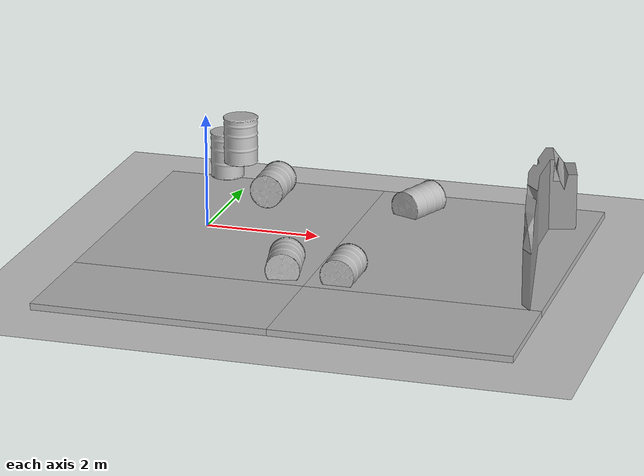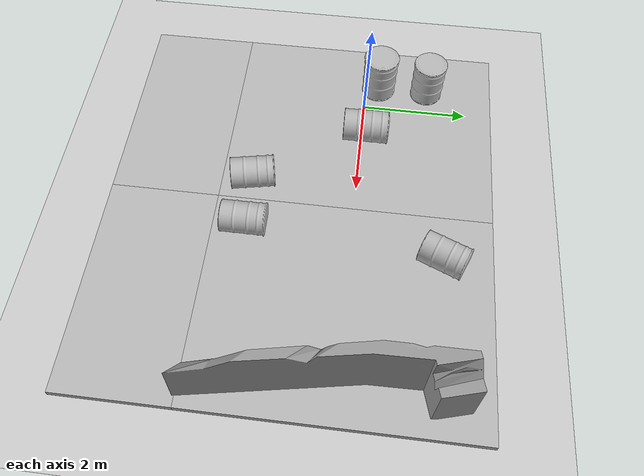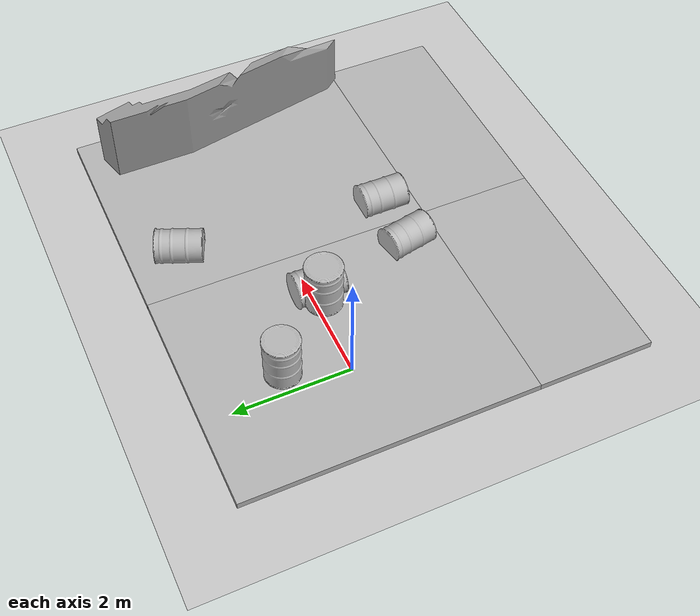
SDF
<gazebo version="1.2">
 <world name="default">
  <physics type="ode">
   <gravity>0 0 -9.8</gravity>
   <update_rate>1000</update_rate>
   <ode>
    <solver><type>quick</type><dt>0.001</dt><iters>50</iters><sor>1.4</sor></solver>
    <constraints>
     <cfm>0.0</cfm>
     <erp>0.2</erp>
     <contact_max_correcting_vel>100.0</contact_max_correcting_vel>
     <contact_surface_layer>0.0</contact_surface_layer>
    </constraints>
   </ode>
  </physics>
  <include><uri>model://sun</uri></include>
  <include><uri>model://asphalt_plane</uri><pose>0.0 0.0 -0.05 0.0 0.0 0.0</pose></include>
  <include><uri>model://mud_box2</uri><pose>2.5 -2.5 -0.05 0.0 0.0 0.0</pose></include>
  <include>
   <uri>model://barrel_50</uri>
   <name>oil drum 1</name>
   <static>true</static>
   <pose>2.0 -2.0 0 0 0 0.2</pose>
  </include>
  <include>
   <uri>model://barrel_50</uri>
   <name>oil drum 2</name>
   <static>true</static>
   <pose>3.000000 -2.000000 0.000000 0.000000 0.000000 0.000000</pose>
  </include>
  <include>
   <uri>model://barrel_50</uri>
   <name>oil drum 3</name>
   <pose>3.311180 1.580800 0.000000 0.000000 0.000000 -0.400000</pose>
  </include>
  <include>
   <uri>model://grey_brickwall</uri>
   <name>broken Grey Brickwall</name>
   <static>true</static>
   <pose>5.534370 1.300000 0.000000 0.000000 0.000000 -1.3000</pose>
  </include>
  <include><uri>model://beer</uri><name>bear1</name><pose>0.561127 0.210769 0.7 0 0 0.000418</pose></include>
  <include>
   <uri>model://beer</uri>
   <name>beer2</name>
   <pose>0.004894 1.141844 0.1 0 0.000008 0.000146</pose>
  </include>
  <include>
   <uri>model://beer</uri>
   <name>beer3</name>
   <pose>1.1879 -0.795979 0.85 -1.570793 -1.339556 0.013769</pose>
  </include>
  <plugin filename="libDRCPlugin.so" name="drc_plugin">
   <drchubo><model_name>drchubo</model_name><pin_link>Body_Torso</pin_link></drchubo>
   <drill>
    <drill_model>drill</drill_model>
    <coupling_link>link</coupling_link>
    <thread_pitch>-1000</thread_pitch>
    <coupling_relative_pose>0.001784 -4.6e-05 0.023 1.56985 1.55991 -0.000936</coupling_relative_pose>
   </drill>
  </plugin>
 </world>
</gazebo>

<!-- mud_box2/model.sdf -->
<sdf version="1.4">
  <model name="mud_box">
    <static>true</static>
    <link name="link">
      <collision name="collision">
        <geometry>
          <box>
            <size>8 10 0.2</size>
          </box>
        </geometry>
      </collision>
      <visual name="visual_1">
        <pose>-2 2.5 0 0 0 0</pose>
        <cast_shadows>false</cast_shadows>
        <geometry>
          <box>
            <size>4 5 0.2</size>
          </box>
        </geometry>
        <material>
          <script>
            <uri>model://mud_box/materials/scripts</uri>
            <uri>model://mud_box/materials/textures</uri>
            <name>vrc/mud</name>
          </script>
        </material>
      </visual>
      <visual name="visual_2">
        <pose>2 2.5 0 0 0 0</pose>
        <cast_shadows>false</cast_shadows>
        <geometry>
          <box>
            <size>4 5 0.2</size>
          </box>
        </geometry>
        <material>
          <script>
            <uri>model://mud_box/materials/scripts</uri>
            <uri>model://mud_box/materials/textures</uri>
            <name>vrc/mud</name>
          </script>
        </material>
      </visual>
      <visual name="visual_3">
        <pose>2 -1.0 0 0 0 0</pose>
        <cast_shadows>false</cast_shadows>
        <geometry>
          <box>
            <size>4 2.0 0.2</size>
          </box>
        </geometry>
        <material>
          <script>
            <uri>model://mud_box/materials/scripts</uri>
            <uri>model://mud_box/materials/textures</uri>
            <name>vrc/mud</name>
          </script>
        </material>
      </visual>
      <visual name="visual_4">
        <pose>-2 -1.0 0 0 0 0</pose>
        <cast_shadows>false</cast_shadows>
        <geometry>
          <box>
            <size>4 2.0 0.2</size>
          </box>
        </geometry>
        <material>
          <script>
            <uri>model://mud_box/materials/scripts</uri>
            <uri>model://mud_box/materials/textures</uri>
            <name>vrc/mud</name>
          </script>
        </material>
      </visual>

    </link>
  </model>
</sdf>

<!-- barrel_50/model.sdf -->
<sdf version="1.4">
  <model name="barrel_50">
    <link name="link">
	<!-- Original model did not have inertia matrix I copied the matrix from the beer -->
      <inertial>
        <mass>0.390</mass>
        <inertia>
          <ixx>0.00058</ixx>
          <ixy>0</ixy>
          <ixz>0</ixz>
          <iyy>0.00058</iyy>
          <iyz>0</iyz>
          <izz>0.00019</izz>
        </inertia>
      </inertial>
      <collision name="collision">
        <geometry>
          <cylinder>
            <radius>0.098</radius>
            <length>0.035</length>
          </cylinder>
        </geometry>
      </collision>
      <visual name="visual">
        <geometry>
          <mesh>
            <uri>model://barrel_50/meshes/barrel_50.stl</uri>
            <scale> 0.01 0.01 0.01 </scale>
          </mesh>
        </geometry>
      </visual>
    </link>
  </model>
</sdf>

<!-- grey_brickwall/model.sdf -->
<sdf version="1.4">
  <model name="Grey Brick Wall">
    <link name="link">
      <inertial>
        <pose>0 0 0.4 0 0 0</pose>
        <mass>500</mass>
        <inertia>
          <ixx>51.2096</ixx>
          <iyy>51.2096</iyy>
          <izz>25</izz>
          <ixy>0</ixy>
          <ixz>0</ixz>
        </inertia>
      </inertial>
      <collision name="collision">
        <geometry>
          <mesh>
            <uri>model://grey_brickwall/meshes/grey_brickwall.dae</uri>
          </mesh>
        </geometry>
      </collision>
      <visual name="visual">
        <geometry>
          <mesh>
            <uri>model://grey_brickwall/meshes/grey_brickwall.dae</uri>
 	    <scale> 0.5 0.1 0.3 </scale>
          </mesh>
        </geometry>
        <material>
          <script>
            <uri>model://grey_brickwall/materials/scripts</uri>
            <uri>model://grey_brickwall/materials/textures</uri>
            <name>vrc/grey_wall</name>
          </script>
        </material>
      </visual>
    </link>
  </model>
</sdf>

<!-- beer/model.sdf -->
<sdf version='1.4'>
  <model name="beer">
    <link name='link'>
      <pose>0 0 0.85 0 0 0</pose>
      <inertial>
        <mass>1</mass>
        <inertia>
          <ixx>0.075833</ixx>
          <ixy>0</ixy>
          <ixz>0</ixz>
          <iyy>0.075883</iyy>
          <iyz>0</iyz>
          <izz>0.045</izz>
        </inertia>
      </inertial>
      <collision name='collision'>
        <pose>0 0 0 0 0 0</pose>
        <geometry>
          <cylinder>
            <radius>0.3000</radius>
            <length>0.800</length>
          </cylinder>
        </geometry>
      </collision>

      <visual name='visual'>
        <pose>-0.03 0.22 -0.054 1.57 0 0</pose>
        <geometry>
          <mesh>
            <uri>model://barrel_50/meshes/barrel_50.stl</uri>
            <scale> 0.01 0.01 0.01 </scale>
          </mesh>
        </geometry>
      </visual>
    </link>
  </model>
</sdf>
